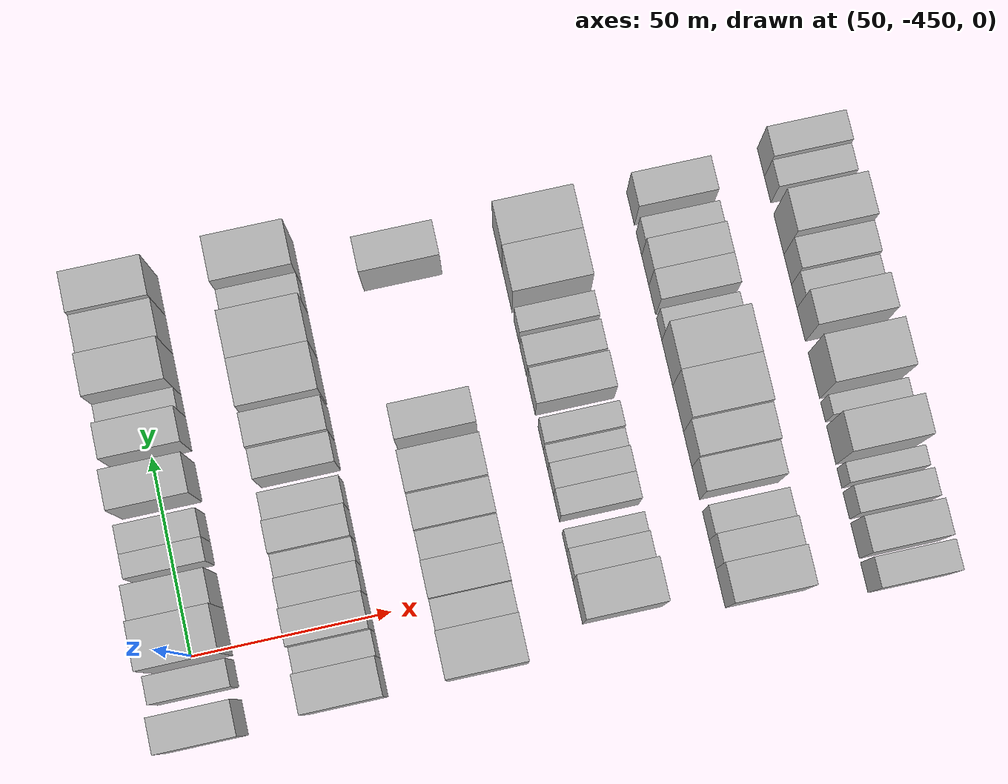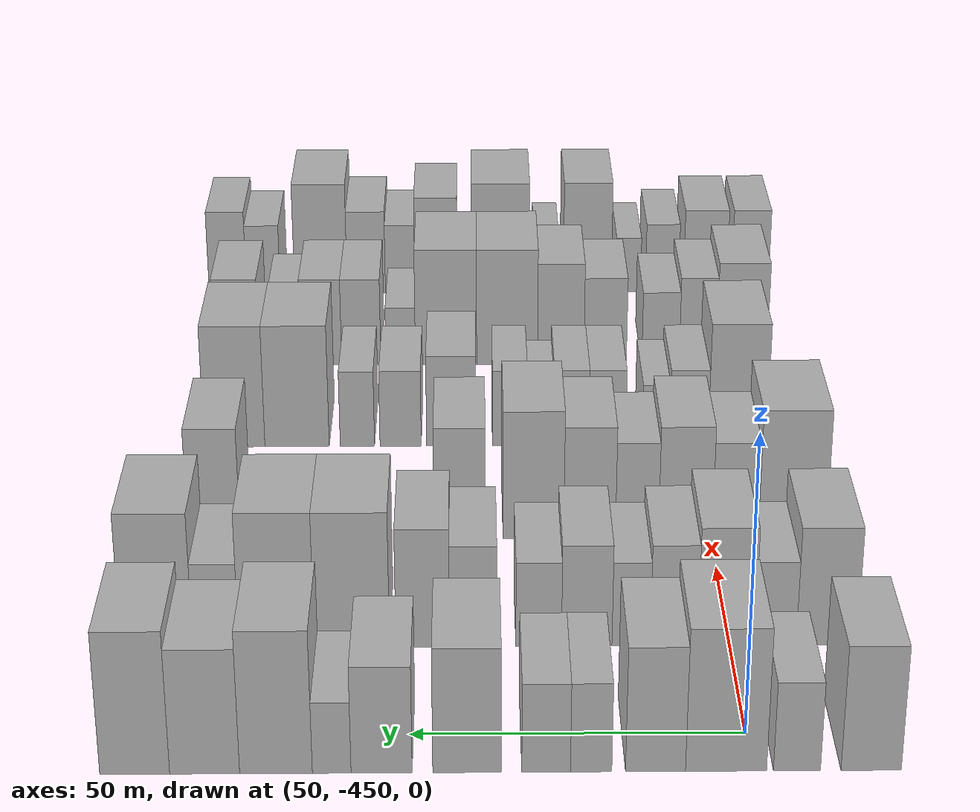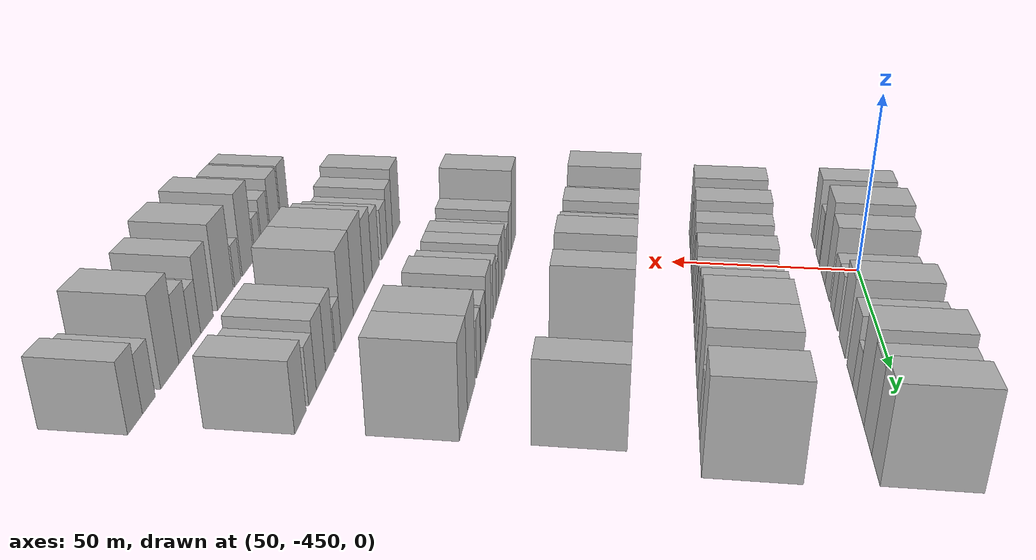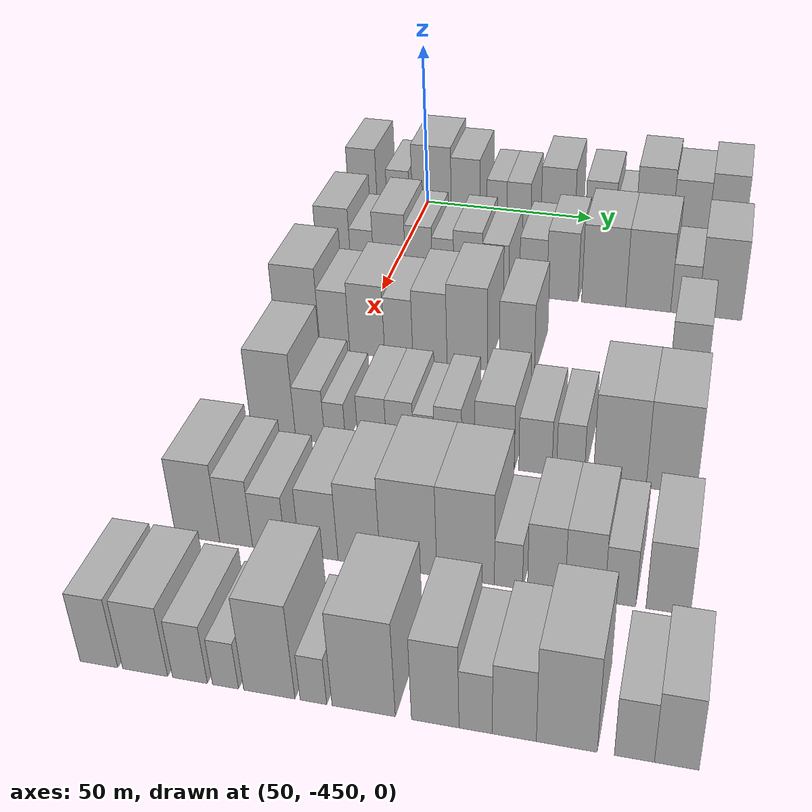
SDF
<sdf version="1.6">
 <world name="default">
  <model name="building_12">
   <static>1</static>
   <pose>50.0000 -467.3228 0 0.000000 0.000000 0.000000</pose>
   <link name="link">
    <pose>0 0 10.50 0 0 0</pose>
    <collision name="collision"><geometry><box><size>20.0000 8.7782 21.0000</size></box></geometry></collision>
    <visual name="visual">
     <cast_shadows>0</cast_shadows>
     <geometry><box><size>20.0000 8.7782 21.0000</size></box></geometry>
     <material>
      <script>
       <uri>model://HANNAS_wall/materials/scripts</uri>
       <uri>model://HANNAS_wall/materials/textures</uri>
       <name>vrc/HANNAS_wall</name>
      </script>
     </material>
    </visual>
   </link>
  </model>
  <model name="building_13">
   <static>1</static>
   <pose>50.0000 -456.5102 0 0.000000 0.000000 0.000000</pose>
   <link name="link">
    <pose>0 0 7.50 0 0 0</pose>
    <collision name="collision"><geometry><box><size>20.0000 6.8471 15.0000</size></box></geometry></collision>
    <visual name="visual">
     <cast_shadows>0</cast_shadows>
     <geometry><box><size>20.0000 6.8471 15.0000</size></box></geometry>
     <material>
      <script>
       <uri>model://HANNAS_wall/materials/scripts</uri>
       <uri>model://HANNAS_wall/materials/textures</uri>
       <name>vrc/HANNAS_wall</name>
      </script>
     </material>
    </visual>
   </link>
  </model>
  <model name="building_14">
   <static>1</static>
   <pose>50.0000 -446.1822 0 0.000000 0.000000 0.000000</pose>
   <link name="link">
    <pose>0 0 12.00 0 0 0</pose>
    <collision name="collision"><geometry><box><size>20.0000 11.8090 24.0000</size></box></geometry></collision>
    <visual name="visual">
     <cast_shadows>0</cast_shadows>
     <geometry><box><size>20.0000 11.8090 24.0000</size></box></geometry>
     <material>
      <script>
       <uri>model://HANNAS_wall/materials/scripts</uri>
       <uri>model://HANNAS_wall/materials/textures</uri>
       <name>vrc/HANNAS_wall</name>
      </script>
     </material>
    </visual>
   </link>
  </model>
  <model name="building_15">
   <static>1</static>
   <pose>50.0000 -435.9162 0 0.000000 0.000000 0.000000</pose>
   <link name="link">
    <pose>0 0 10.50 0 0 0</pose>
    <collision name="collision"><geometry><box><size>20.0000 8.7229 21.0000</size></box></geometry></collision>
    <visual name="visual">
     <cast_shadows>0</cast_shadows>
     <geometry><box><size>20.0000 8.7229 21.0000</size></box></geometry>
     <material>
      <script>
       <uri>model://HANNAS_wall/materials/scripts</uri>
       <uri>model://HANNAS_wall/materials/textures</uri>
       <name>vrc/HANNAS_wall</name>
      </script>
     </material>
    </visual>
   </link>
  </model>
  <model name="building_16">
   <static>1</static>
   <pose>50.0000 -426.5537 0 0.000000 0.000000 0.000000</pose>
   <link name="link">
    <pose>0 0 7.50 0 0 0</pose>
    <collision name="collision"><geometry><box><size>20.0000 6.0021 15.0000</size></box></geometry></collision>
    <visual name="visual">
     <cast_shadows>0</cast_shadows>
     <geometry><box><size>20.0000 6.0021 15.0000</size></box></geometry>
     <material>
      <script>
       <uri>model://HANNAS_wall/materials/scripts</uri>
       <uri>model://HANNAS_wall/materials/textures</uri>
       <name>vrc/HANNAS_wall</name>
      </script>
     </material>
    </visual>
   </link>
  </model>
  <model name="building_17">
   <static>1</static>
   <pose>50.0000 -420.0145 0 0.000000 0.000000 0.000000</pose>
   <link name="link">
    <pose>0 0 7.50 0 0 0</pose>
    <collision name="collision"><geometry><box><size>20.0000 7.0762 15.0000</size></box></geometry></collision>
    <visual name="visual">
     <cast_shadows>0</cast_shadows>
     <geometry><box><size>20.0000 7.0762 15.0000</size></box></geometry>
     <material>
      <script>
       <uri>model://HANNAS_wall/materials/scripts</uri>
       <uri>model://HANNAS_wall/materials/textures</uri>
       <name>vrc/HANNAS_wall</name>
      </script>
     </material>
    </visual>
   </link>
  </model>
  <model name="building_18">
   <static>1</static>
   <pose>50.0000 -408.5056 0 0.000000 0.000000 0.000000</pose>
   <link name="link">
    <pose>0 0 10.50 0 0 0</pose>
    <collision name="collision"><geometry><box><size>20.0000 9.9416 21.0000</size></box></geometry></collision>
    <visual name="visual">
     <cast_shadows>0</cast_shadows>
     <geometry><box><size>20.0000 9.9416 21.0000</size></box></geometry>
     <material>
      <script>
       <uri>model://HANNAS_wall/materials/scripts</uri>
       <uri>model://HANNAS_wall/materials/textures</uri>
       <name>vrc/HANNAS_wall</name>
      </script>
     </material>
    </visual>
   </link>
  </model>
  <model name="building_19">
   <static>1</static>
   <pose>50.0000 -396.1010 0 0.000000 0.000000 0.000000</pose>
   <link name="link">
    <pose>0 0 9.00 0 0 0</pose>
    <collision name="collision"><geometry><box><size>20.0000 8.8676 18.0000</size></box></geometry></collision>
    <visual name="visual">
     <cast_shadows>0</cast_shadows>
     <geometry><box><size>20.0000 8.8676 18.0000</size></box></geometry>
     <material>
      <script>
       <uri>model://HANNAS_wall/materials/scripts</uri>
       <uri>model://HANNAS_wall/materials/textures</uri>
       <name>vrc/HANNAS_wall</name>
      </script>
     </material>
    </visual>
   </link>
  </model>
  <model name="building_20">
   <static>1</static>
   <pose>50.0000 -388.8554 0 0.000000 0.000000 0.000000</pose>
   <link name="link">
    <pose>0 0 6.00 0 0 0</pose>
    <collision name="collision"><geometry><box><size>20.0000 5.6237 12.0000</size></box></geometry></collision>
    <visual name="visual">
     <cast_shadows>0</cast_shadows>
     <geometry><box><size>20.0000 5.6237 12.0000</size></box></geometry>
     <material>
      <script>
       <uri>model://HANNAS_wall/materials/scripts</uri>
       <uri>model://HANNAS_wall/materials/textures</uri>
       <name>vrc/HANNAS_wall</name>
      </script>
     </material>
    </visual>
   </link>
  </model>
  <model name="building_21">
   <static>1</static>
   <pose>50.0000 -380.7657 0 0.000000 0.000000 0.000000</pose>
   <link name="link">
    <pose>0 0 12.00 0 0 0</pose>
    <collision name="collision"><geometry><box><size>20.0000 10.5557 24.0000</size></box></geometry></collision>
    <visual name="visual">
     <cast_shadows>0</cast_shadows>
     <geometry><box><size>20.0000 10.5557 24.0000</size></box></geometry>
     <material>
      <script>
       <uri>model://HANNAS_wall/materials/scripts</uri>
       <uri>model://HANNAS_wall/materials/textures</uri>
       <name>vrc/HANNAS_wall</name>
      </script>
     </material>
    </visual>
   </link>
  </model>
  <model name="building_22">
   <static>1</static>
   <pose>50.0000 -370.4100 0 0.000000 0.000000 0.000000</pose>
   <link name="link">
    <pose>0 0 10.50 0 0 0</pose>
    <collision name="collision"><geometry><box><size>20.0000 10.1555 21.0000</size></box></geometry></collision>
    <visual name="visual">
     <cast_shadows>0</cast_shadows>
     <geometry><box><size>20.0000 10.1555 21.0000</size></box></geometry>
     <material>
      <script>
       <uri>model://HANNAS_wall/materials/scripts</uri>
       <uri>model://HANNAS_wall/materials/textures</uri>
       <name>vrc/HANNAS_wall</name>
      </script>
     </material>
    </visual>
   </link>
  </model>
  <model name="building_23">
   <static>1</static>
   <pose>50.0000 -360.2663 0 0.000000 0.000000 0.000000</pose>
   <link name="link">
    <pose>0 0 12.00 0 0 0</pose>
    <collision name="collision"><geometry><box><size>20.0000 10.1320 24.0000</size></box></geometry></collision>
    <visual name="visual">
     <cast_shadows>0</cast_shadows>
     <geometry><box><size>20.0000 10.1320 24.0000</size></box></geometry>
     <material>
      <script>
       <uri>model://HANNAS_wall/materials/scripts</uri>
       <uri>model://HANNAS_wall/materials/textures</uri>
       <name>vrc/HANNAS_wall</name>
      </script>
     </material>
    </visual>
   </link>
  </model>
  <model name="building_140">
   <static>1</static>
   <pose>85.0000 -465.2256 0 0.000000 0.000000 0.000000</pose>
   <link name="link">
    <pose>0 0 10.50 0 0 0</pose>
    <collision name="collision"><geometry><box><size>20.0000 9.6216 21.0000</size></box></geometry></collision>
    <visual name="visual">
     <cast_shadows>0</cast_shadows>
     <geometry><box><size>20.0000 9.6216 21.0000</size></box></geometry>
     <material>
      <script>
       <uri>model://HANNAS_wall/materials/scripts</uri>
       <uri>model://HANNAS_wall/materials/textures</uri>
       <name>vrc/HANNAS_wall</name>
      </script>
     </material>
    </visual>
   </link>
  </model>
  <model name="building_141">
   <static>1</static>
   <pose>85.0000 -457.1407 0 0.000000 0.000000 0.000000</pose>
   <link name="link">
    <pose>0 0 7.50 0 0 0</pose>
    <collision name="collision"><geometry><box><size>20.0000 6.5482 15.0000</size></box></geometry></collision>
    <visual name="visual">
     <cast_shadows>0</cast_shadows>
     <geometry><box><size>20.0000 6.5482 15.0000</size></box></geometry>
     <material>
      <script>
       <uri>model://HANNAS_wall/materials/scripts</uri>
       <uri>model://HANNAS_wall/materials/textures</uri>
       <name>vrc/HANNAS_wall</name>
      </script>
     </material>
    </visual>
   </link>
  </model>
  <model name="building_142">
   <static>1</static>
   <pose>85.0000 -449.3591 0 0.000000 0.000000 0.000000</pose>
   <link name="link">
    <pose>0 0 10.50 0 0 0</pose>
    <collision name="collision"><geometry><box><size>20.0000 9.0150 21.0000</size></box></geometry></collision>
    <visual name="visual">
     <cast_shadows>0</cast_shadows>
     <geometry><box><size>20.0000 9.0150 21.0000</size></box></geometry>
     <material>
      <script>
       <uri>model://HANNAS_wall/materials/scripts</uri>
       <uri>model://HANNAS_wall/materials/textures</uri>
       <name>vrc/HANNAS_wall</name>
      </script>
     </material>
    </visual>
   </link>
  </model>
  <model name="building_143">
   <static>1</static>
   <pose>85.0000 -441.1050 0 0.000000 0.000000 0.000000</pose>
   <link name="link">
    <pose>0 0 9.00 0 0 0</pose>
    <collision name="collision"><geometry><box><size>20.0000 7.4931 18.0000</size></box></geometry></collision>
    <visual name="visual">
     <cast_shadows>0</cast_shadows>
     <geometry><box><size>20.0000 7.4931 18.0000</size></box></geometry>
     <material>
      <script>
       <uri>model://HANNAS_wall/materials/scripts</uri>
       <uri>model://HANNAS_wall/materials/textures</uri>
       <name>vrc/HANNAS_wall</name>
      </script>
     </material>
    </visual>
   </link>
  </model>
  <model name="building_144">
   <static>1</static>
   <pose>85.0000 -434.3496 0 0.000000 0.000000 0.000000</pose>
   <link name="link">
    <pose>0 0 7.50 0 0 0</pose>
    <collision name="collision"><geometry><box><size>20.0000 6.0178 15.0000</size></box></geometry></collision>
    <visual name="visual">
     <cast_shadows>0</cast_shadows>
     <geometry><box><size>20.0000 6.0178 15.0000</size></box></geometry>
     <material>
      <script>
       <uri>model://HANNAS_wall/materials/scripts</uri>
       <uri>model://HANNAS_wall/materials/textures</uri>
       <name>vrc/HANNAS_wall</name>
      </script>
     </material>
    </visual>
   </link>
  </model>
  <model name="building_145">
   <static>1</static>
   <pose>85.0000 -427.3664 0 0.000000 0.000000 0.000000</pose>
   <link name="link">
    <pose>0 0 9.00 0 0 0</pose>
    <collision name="collision"><geometry><box><size>20.0000 7.9486 18.0000</size></box></geometry></collision>
    <visual name="visual">
     <cast_shadows>0</cast_shadows>
     <geometry><box><size>20.0000 7.9486 18.0000</size></box></geometry>
     <material>
      <script>
       <uri>model://HANNAS_wall/materials/scripts</uri>
       <uri>model://HANNAS_wall/materials/textures</uri>
       <name>vrc/HANNAS_wall</name>
      </script>
     </material>
    </visual>
   </link>
  </model>
  <model name="building_146">
   <static>1</static>
   <pose>85.0000 -419.7943 0 0.000000 0.000000 0.000000</pose>
   <link name="link">
    <pose>0 0 7.50 0 0 0</pose>
    <collision name="collision"><geometry><box><size>20.0000 7.1955 15.0000</size></box></geometry></collision>
    <visual name="visual">
     <cast_shadows>0</cast_shadows>
     <geometry><box><size>20.0000 7.1955 15.0000</size></box></geometry>
     <material>
      <script>
       <uri>model://HANNAS_wall/materials/scripts</uri>
       <uri>model://HANNAS_wall/materials/textures</uri>
       <name>vrc/HANNAS_wall</name>
      </script>
     </material>
    </visual>
   </link>
  </model>
  <model name="building_147">
   <static>1</static>
   <pose>85.0000 -409.4663 0 0.000000 0.000000 0.000000</pose>
   <link name="link">
    <pose>0 0 9.00 0 0 0</pose>
    <collision name="collision"><geometry><box><size>20.0000 7.4606 18.0000</size></box></geometry></collision>
    <visual name="visual">
     <cast_shadows>0</cast_shadows>
     <geometry><box><size>20.0000 7.4606 18.0000</size></box></geometry>
     <material>
      <script>
       <uri>model://HANNAS_wall/materials/scripts</uri>
       <uri>model://HANNAS_wall/materials/textures</uri>
       <name>vrc/HANNAS_wall</name>
      </script>
     </material>
    </visual>
   </link>
  </model>
  <model name="building_148">
   <static>1</static>
   <pose>85.0000 -401.5195 0 0.000000 0.000000 0.000000</pose>
   <link name="link">
    <pose>0 0 10.50 0 0 0</pose>
    <collision name="collision"><geometry><box><size>20.0000 8.4329 21.0000</size></box></geometry></collision>
    <visual name="visual">
     <cast_shadows>0</cast_shadows>
     <geometry><box><size>20.0000 8.4329 21.0000</size></box></geometry>
     <material>
      <script>
       <uri>model://HANNAS_wall/materials/scripts</uri>
       <uri>model://HANNAS_wall/materials/textures</uri>
       <name>vrc/HANNAS_wall</name>
      </script>
     </material>
    </visual>
   </link>
  </model>
  <model name="building_149">
   <static>1</static>
   <pose>85.0000 -390.3840 0 0.000000 0.000000 0.000000</pose>
   <link name="link">
    <pose>0 0 12.00 0 0 0</pose>
    <collision name="collision"><geometry><box><size>20.0000 11.8381 24.0000</size></box></geometry></collision>
    <visual name="visual">
     <cast_shadows>0</cast_shadows>
     <geometry><box><size>20.0000 11.8381 24.0000</size></box></geometry>
     <material>
      <script>
       <uri>model://HANNAS_wall/materials/scripts</uri>
       <uri>model://HANNAS_wall/materials/textures</uri>
       <name>vrc/HANNAS_wall</name>
      </script>
     </material>
    </visual>
   </link>
  </model>
  <model name="building_150">
   <static>1</static>
   <pose>85.0000 -378.5194 0 0.000000 0.000000 0.000000</pose>
   <link name="link">
    <pose>0 0 12.00 0 0 0</pose>
    <collision name="collision"><geometry><box><size>20.0000 11.8911 24.0000</size></box></geometry></collision>
    <visual name="visual">
     <cast_shadows>0</cast_shadows>
     <geometry><box><size>20.0000 11.8911 24.0000</size></box></geometry>
     <material>
      <script>
       <uri>model://HANNAS_wall/materials/scripts</uri>
       <uri>model://HANNAS_wall/materials/textures</uri>
       <name>vrc/HANNAS_wall</name>
      </script>
     </material>
    </visual>
   </link>
  </model>
  <model name="building_151">
   <static>1</static>
   <pose>85.0000 -368.9596 0 0.000000 0.000000 0.000000</pose>
   <link name="link">
    <pose>0 0 7.50 0 0 0</pose>
    <collision name="collision"><geometry><box><size>20.0000 7.2283 15.0000</size></box></geometry></collision>
    <visual name="visual">
     <cast_shadows>0</cast_shadows>
     <geometry><box><size>20.0000 7.2283 15.0000</size></box></geometry>
     <material>
      <script>
       <uri>model://HANNAS_wall/materials/scripts</uri>
       <uri>model://HANNAS_wall/materials/textures</uri>
       <name>vrc/HANNAS_wall</name>
      </script>
     </material>
    </visual>
   </link>
  </model>
  <model name="building_152">
   <static>1</static>
   <pose>85.0000 -359.6812 0 0.000000 0.000000 0.000000</pose>
   <link name="link">
    <pose>0 0 12.00 0 0 0</pose>
    <collision name="collision"><geometry><box><size>20.0000 11.3286 24.0000</size></box></geometry></collision>
    <visual name="visual">
     <cast_shadows>0</cast_shadows>
     <geometry><box><size>20.0000 11.3286 24.0000</size></box></geometry>
     <material>
      <script>
       <uri>model://HANNAS_wall/materials/scripts</uri>
       <uri>model://HANNAS_wall/materials/textures</uri>
       <name>vrc/HANNAS_wall</name>
      </script>
     </material>
    </visual>
   </link>
  </model>
  <model name="building_268">
   <static>1</static>
   <pose>120.0000 -463.7606 0 0.000000 0.000000 0.000000</pose>
   <link name="link">
    <pose>0 0 12.00 0 0 0</pose>
    <collision name="collision"><geometry><box><size>20.0000 11.5864 24.0000</size></box></geometry></collision>
    <visual name="visual">
     <cast_shadows>0</cast_shadows>
     <geometry><box><size>20.0000 11.5864 24.0000</size></box></geometry>
     <material>
      <script>
       <uri>model://HANNAS_wall/materials/scripts</uri>
       <uri>model://HANNAS_wall/materials/textures</uri>
       <name>vrc/HANNAS_wall</name>
      </script>
     </material>
    </visual>
   </link>
  </model>
  <model name="building_269">
   <static>1</static>
   <pose>120.0000 -454.0583 0 0.000000 0.000000 0.000000</pose>
   <link name="link">
    <pose>0 0 9.00 0 0 0</pose>
    <collision name="collision"><geometry><box><size>20.0000 7.8181 18.0000</size></box></geometry></collision>
    <visual name="visual">
     <cast_shadows>0</cast_shadows>
     <geometry><box><size>20.0000 7.8181 18.0000</size></box></geometry>
     <material>
      <script>
       <uri>model://HANNAS_wall/materials/scripts</uri>
       <uri>model://HANNAS_wall/materials/textures</uri>
       <name>vrc/HANNAS_wall</name>
      </script>
     </material>
    </visual>
   </link>
  </model>
  <model name="building_270">
   <static>1</static>
   <pose>120.0000 -445.5727 0 0.000000 0.000000 0.000000</pose>
   <link name="link">
    <pose>0 0 10.50 0 0 0</pose>
    <collision name="collision"><geometry><box><size>20.0000 9.1531 21.0000</size></box></geometry></collision>
    <visual name="visual">
     <cast_shadows>0</cast_shadows>
     <geometry><box><size>20.0000 9.1531 21.0000</size></box></geometry>
     <material>
      <script>
       <uri>model://HANNAS_wall/materials/scripts</uri>
       <uri>model://HANNAS_wall/materials/textures</uri>
       <name>vrc/HANNAS_wall</name>
      </script>
     </material>
    </visual>
   </link>
  </model>
  <model name="building_271">
   <static>1</static>
   <pose>120.0000 -437.3479 0 0.000000 0.000000 0.000000</pose>
   <link name="link">
    <pose>0 0 9.00 0 0 0</pose>
    <collision name="collision"><geometry><box><size>20.0000 7.2966 18.0000</size></box></geometry></collision>
    <visual name="visual">
     <cast_shadows>0</cast_shadows>
     <geometry><box><size>20.0000 7.2966 18.0000</size></box></geometry>
     <material>
      <script>
       <uri>model://HANNAS_wall/materials/scripts</uri>
       <uri>model://HANNAS_wall/materials/textures</uri>
       <name>vrc/HANNAS_wall</name>
      </script>
     </material>
    </visual>
   </link>
  </model>
  <model name="building_272">
   <static>1</static>
   <pose>120.0000 -429.3195 0 0.000000 0.000000 0.000000</pose>
   <link name="link">
    <pose>0 0 10.50 0 0 0</pose>
    <collision name="collision"><geometry><box><size>20.0000 8.7601 21.0000</size></box></geometry></collision>
    <visual name="visual">
     <cast_shadows>0</cast_shadows>
     <geometry><box><size>20.0000 8.7601 21.0000</size></box></geometry>
     <material>
      <script>
       <uri>model://HANNAS_wall/materials/scripts</uri>
       <uri>model://HANNAS_wall/materials/textures</uri>
       <name>vrc/HANNAS_wall</name>
      </script>
     </material>
    </visual>
   </link>
  </model>
  <model name="building_273">
   <static>1</static>
   <pose>120.0000 -419.7780 0 0.000000 0.000000 0.000000</pose>
   <link name="link">
    <pose>0 0 12.00 0 0 0</pose>
    <collision name="collision"><geometry><box><size>20.0000 10.3230 24.0000</size></box></geometry></collision>
    <visual name="visual">
     <cast_shadows>0</cast_shadows>
     <geometry><box><size>20.0000 10.3230 24.0000</size></box></geometry>
     <material>
      <script>
       <uri>model://HANNAS_wall/materials/scripts</uri>
       <uri>model://HANNAS_wall/materials/textures</uri>
       <name>vrc/HANNAS_wall</name>
      </script>
     </material>
    </visual>
   </link>
  </model>
  <model name="building_274">
   <static>1</static>
   <pose>120.0000 -407.2588 0 0.000000 0.000000 0.000000</pose>
   <link name="link">
    <pose>0 0 10.50 0 0 0</pose>
    <collision name="collision"><geometry><box><size>20.0000 8.7153 21.0000</size></box></geometry></collision>
    <visual name="visual">
     <cast_shadows>0</cast_shadows>
     <geometry><box><size>20.0000 8.7153 21.0000</size></box></geometry>
     <material>
      <script>
       <uri>model://HANNAS_wall/materials/scripts</uri>
       <uri>model://HANNAS_wall/materials/textures</uri>
       <name>vrc/HANNAS_wall</name>
      </script>
     </material>
    </visual>
   </link>
  </model>
  <model name="building_275">
   <static>1</static>
   <pose>120.0000 -365.6200 0 0.000000 0.000000 0.000000</pose>
   <link name="link">
    <pose>0 0 10.50 0 0 0</pose>
    <collision name="collision"><geometry><box><size>20.0000 8.8541 21.0000</size></box></geometry></collision>
    <visual name="visual">
     <cast_shadows>0</cast_shadows>
     <geometry><box><size>20.0000 8.8541 21.0000</size></box></geometry>
     <material>
      <script>
       <uri>model://HANNAS_wall/materials/scripts</uri>
       <uri>model://HANNAS_wall/materials/textures</uri>
       <name>vrc/HANNAS_wall</name>
      </script>
     </material>
    </visual>
   </link>
  </model>
  <model name="building_392">
   <static>1</static>
   <pose>155.0000 -457.7177 0 0.000000 0.000000 0.000000</pose>
   <link name="link">
    <pose>0 0 12.00 0 0 0</pose>
    <collision name="collision"><geometry><box><size>20.0000 10.6877 24.0000</size></box></geometry></collision>
    <visual name="visual">
     <cast_shadows>0</cast_shadows>
     <geometry><box><size>20.0000 10.6877 24.0000</size></box></geometry>
     <material>
      <script>
       <uri>model://HANNAS_wall/materials/scripts</uri>
       <uri>model://HANNAS_wall/materials/textures</uri>
       <name>vrc/HANNAS_wall</name>
      </script>
     </material>
    </visual>
   </link>
  </model>
  <model name="building_393">
   <static>1</static>
   <pose>155.0000 -448.8604 0 0.000000 0.000000 0.000000</pose>
   <link name="link">
    <pose>0 0 7.50 0 0 0</pose>
    <collision name="collision"><geometry><box><size>20.0000 7.0269 15.0000</size></box></geometry></collision>
    <visual name="visual">
     <cast_shadows>0</cast_shadows>
     <geometry><box><size>20.0000 7.0269 15.0000</size></box></geometry>
     <material>
      <script>
       <uri>model://HANNAS_wall/materials/scripts</uri>
       <uri>model://HANNAS_wall/materials/textures</uri>
       <name>vrc/HANNAS_wall</name>
      </script>
     </material>
    </visual>
   </link>
  </model>
  <model name="building_394">
   <static>1</static>
   <pose>155.0000 -442.8613 0 0.000000 0.000000 0.000000</pose>
   <link name="link">
    <pose>0 0 6.00 0 0 0</pose>
    <collision name="collision"><geometry><box><size>20.0000 4.9713 12.0000</size></box></geometry></collision>
    <visual name="visual">
     <cast_shadows>0</cast_shadows>
     <geometry><box><size>20.0000 4.9713 12.0000</size></box></geometry>
     <material>
      <script>
       <uri>model://HANNAS_wall/materials/scripts</uri>
       <uri>model://HANNAS_wall/materials/textures</uri>
       <name>vrc/HANNAS_wall</name>
      </script>
     </material>
    </visual>
   </link>
  </model>
  <model name="building_395">
   <static>1</static>
   <pose>155.0000 -434.0347 0 0.000000 0.000000 0.000000</pose>
   <link name="link">
    <pose>0 0 7.50 0 0 0</pose>
    <collision name="collision"><geometry><box><size>20.0000 6.6820 15.0000</size></box></geometry></collision>
    <visual name="visual">
     <cast_shadows>0</cast_shadows>
     <geometry><box><size>20.0000 6.6820 15.0000</size></box></geometry>
     <material>
      <script>
       <uri>model://HANNAS_wall/materials/scripts</uri>
       <uri>model://HANNAS_wall/materials/textures</uri>
       <name>vrc/HANNAS_wall</name>
      </script>
     </material>
    </visual>
   </link>
  </model>
  <model name="building_396">
   <static>1</static>
   <pose>155.0000 -427.5135 0 0.000000 0.000000 0.000000</pose>
   <link name="link">
    <pose>0 0 7.50 0 0 0</pose>
    <collision name="collision"><geometry><box><size>20.0000 6.3604 15.0000</size></box></geometry></collision>
    <visual name="visual">
     <cast_shadows>0</cast_shadows>
     <geometry><box><size>20.0000 6.3604 15.0000</size></box></geometry>
     <material>
      <script>
       <uri>model://HANNAS_wall/materials/scripts</uri>
       <uri>model://HANNAS_wall/materials/textures</uri>
       <name>vrc/HANNAS_wall</name>
      </script>
     </material>
    </visual>
   </link>
  </model>
  <model name="building_397">
   <static>1</static>
   <pose>155.0000 -421.8887 0 0.000000 0.000000 0.000000</pose>
   <link name="link">
    <pose>0 0 6.00 0 0 0</pose>
    <collision name="collision"><geometry><box><size>20.0000 4.8892 12.0000</size></box></geometry></collision>
    <visual name="visual">
     <cast_shadows>0</cast_shadows>
     <geometry><box><size>20.0000 4.8892 12.0000</size></box></geometry>
     <material>
      <script>
       <uri>model://HANNAS_wall/materials/scripts</uri>
       <uri>model://HANNAS_wall/materials/textures</uri>
       <name>vrc/HANNAS_wall</name>
      </script>
     </material>
    </visual>
   </link>
  </model>
  <model name="building_398">
   <static>1</static>
   <pose>155.0000 -416.2859 0 0.000000 0.000000 0.000000</pose>
   <link name="link">
    <pose>0 0 7.50 0 0 0</pose>
    <collision name="collision"><geometry><box><size>20.0000 6.3164 15.0000</size></box></geometry></collision>
    <visual name="visual">
     <cast_shadows>0</cast_shadows>
     <geometry><box><size>20.0000 6.3164 15.0000</size></box></geometry>
     <material>
      <script>
       <uri>model://HANNAS_wall/materials/scripts</uri>
       <uri>model://HANNAS_wall/materials/textures</uri>
       <name>vrc/HANNAS_wall</name>
      </script>
     </material>
    </visual>
   </link>
  </model>
  <model name="building_399">
   <static>1</static>
   <pose>155.0000 -405.6382 0 0.000000 0.000000 0.000000</pose>
   <link name="link">
    <pose>0 0 9.00 0 0 0</pose>
    <collision name="collision"><geometry><box><size>20.0000 8.9791 18.0000</size></box></geometry></collision>
    <visual name="visual">
     <cast_shadows>0</cast_shadows>
     <geometry><box><size>20.0000 8.9791 18.0000</size></box></geometry>
     <material>
      <script>
       <uri>model://HANNAS_wall/materials/scripts</uri>
       <uri>model://HANNAS_wall/materials/textures</uri>
       <name>vrc/HANNAS_wall</name>
      </script>
     </material>
    </visual>
   </link>
  </model>
  <model name="building_400">
   <static>1</static>
   <pose>155.0000 -396.4063 0 0.000000 0.000000 0.000000</pose>
   <link name="link">
    <pose>0 0 7.50 0 0 0</pose>
    <collision name="collision"><geometry><box><size>20.0000 7.4846 15.0000</size></box></geometry></collision>
    <visual name="visual">
     <cast_shadows>0</cast_shadows>
     <geometry><box><size>20.0000 7.4846 15.0000</size></box></geometry>
     <material>
      <script>
       <uri>model://HANNAS_wall/materials/scripts</uri>
       <uri>model://HANNAS_wall/materials/textures</uri>
       <name>vrc/HANNAS_wall</name>
      </script>
     </material>
    </visual>
   </link>
  </model>
  <model name="building_401">
   <static>1</static>
   <pose>155.0000 -388.5423 0 0.000000 0.000000 0.000000</pose>
   <link name="link">
    <pose>0 0 7.50 0 0 0</pose>
    <collision name="collision"><geometry><box><size>20.0000 6.2436 15.0000</size></box></geometry></collision>
    <visual name="visual">
     <cast_shadows>0</cast_shadows>
     <geometry><box><size>20.0000 6.2436 15.0000</size></box></geometry>
     <material>
      <script>
       <uri>model://HANNAS_wall/materials/scripts</uri>
       <uri>model://HANNAS_wall/materials/textures</uri>
       <name>vrc/HANNAS_wall</name>
      </script>
     </material>
    </visual>
   </link>
  </model>
  <model name="building_402">
   <static>1</static>
   <pose>155.0000 -377.5754 0 0.000000 0.000000 0.000000</pose>
   <link name="link">
    <pose>0 0 12.00 0 0 0</pose>
    <collision name="collision"><geometry><box><size>20.0000 11.6901 24.0000</size></box></geometry></collision>
    <visual name="visual">
     <cast_shadows>0</cast_shadows>
     <geometry><box><size>20.0000 11.6901 24.0000</size></box></geometry>
     <material>
      <script>
       <uri>model://HANNAS_wall/materials/scripts</uri>
       <uri>model://HANNAS_wall/materials/textures</uri>
       <name>vrc/HANNAS_wall</name>
      </script>
     </material>
    </visual>
   </link>
  </model>
  <model name="building_403">
   <static>1</static>
   <pose>155.0000 -366.2288 0 0.000000 0.000000 0.000000</pose>
   <link name="link">
    <pose>0 0 12.00 0 0 0</pose>
    <collision name="collision"><geometry><box><size>20.0000 11.0032 24.0000</size></box></geometry></collision>
    <visual name="visual">
     <cast_shadows>0</cast_shadows>
     <geometry><box><size>20.0000 11.0032 24.0000</size></box></geometry>
     <material>
      <script>
       <uri>model://HANNAS_wall/materials/scripts</uri>
       <uri>model://HANNAS_wall/materials/textures</uri>
       <name>vrc/HANNAS_wall</name>
      </script>
     </material>
    </visual>
   </link>
  </model>
  <model name="building_526">
   <static>1</static>
   <pose>190.0000 -461.8370 0 0.000000 0.000000 0.000000</pose>
   <link name="link">
    <pose>0 0 10.50 0 0 0</pose>
    <collision name="collision"><geometry><box><size>20.0000 9.8317 21.0000</size></box></geometry></collision>
    <visual name="visual">
     <cast_shadows>0</cast_shadows>
     <geometry><box><size>20.0000 9.8317 21.0000</size></box></geometry>
     <material>
      <script>
       <uri>model://HANNAS_wall/materials/scripts</uri>
       <uri>model://HANNAS_wall/materials/textures</uri>
       <name>vrc/HANNAS_wall</name>
      </script>
     </material>
    </visual>
   </link>
  </model>
  <model name="building_527">
   <static>1</static>
   <pose>190.0000 -453.3136 0 0.000000 0.000000 0.000000</pose>
   <link name="link">
    <pose>0 0 9.00 0 0 0</pose>
    <collision name="collision"><geometry><box><size>20.0000 7.2151 18.0000</size></box></geometry></collision>
    <visual name="visual">
     <cast_shadows>0</cast_shadows>
     <geometry><box><size>20.0000 7.2151 18.0000</size></box></geometry>
     <material>
      <script>
       <uri>model://HANNAS_wall/materials/scripts</uri>
       <uri>model://HANNAS_wall/materials/textures</uri>
       <name>vrc/HANNAS_wall</name>
      </script>
     </material>
    </visual>
   </link>
  </model>
  <model name="building_528">
   <static>1</static>
   <pose>190.0000 -446.0787 0 0.000000 0.000000 0.000000</pose>
   <link name="link">
    <pose>0 0 7.50 0 0 0</pose>
    <collision name="collision"><geometry><box><size>20.0000 7.2546 15.0000</size></box></geometry></collision>
    <visual name="visual">
     <cast_shadows>0</cast_shadows>
     <geometry><box><size>20.0000 7.2546 15.0000</size></box></geometry>
     <material>
      <script>
       <uri>model://HANNAS_wall/materials/scripts</uri>
       <uri>model://HANNAS_wall/materials/textures</uri>
       <name>vrc/HANNAS_wall</name>
      </script>
     </material>
    </visual>
   </link>
  </model>
  <model name="building_529">
   <static>1</static>
   <pose>190.0000 -435.3200 0 0.000000 0.000000 0.000000</pose>
   <link name="link">
    <pose>0 0 9.00 0 0 0</pose>
    <collision name="collision"><geometry><box><size>20.0000 8.2628 18.0000</size></box></geometry></collision>
    <visual name="visual">
     <cast_shadows>0</cast_shadows>
     <geometry><box><size>20.0000 8.2628 18.0000</size></box></geometry>
     <material>
      <script>
       <uri>model://HANNAS_wall/materials/scripts</uri>
       <uri>model://HANNAS_wall/materials/textures</uri>
       <name>vrc/HANNAS_wall</name>
      </script>
     </material>
    </visual>
   </link>
  </model>
  <model name="building_530">
   <static>1</static>
   <pose>190.0000 -426.6853 0 0.000000 0.000000 0.000000</pose>
   <link name="link">
    <pose>0 0 10.50 0 0 0</pose>
    <collision name="collision"><geometry><box><size>20.0000 9.0066 21.0000</size></box></geometry></collision>
    <visual name="visual">
     <cast_shadows>0</cast_shadows>
     <geometry><box><size>20.0000 9.0066 21.0000</size></box></geometry>
     <material>
      <script>
       <uri>model://HANNAS_wall/materials/scripts</uri>
       <uri>model://HANNAS_wall/materials/textures</uri>
       <name>vrc/HANNAS_wall</name>
      </script>
     </material>
    </visual>
   </link>
  </model>
  <model name="building_531">
   <static>1</static>
   <pose>190.0000 -416.2745 0 0.000000 0.000000 0.000000</pose>
   <link name="link">
    <pose>0 0 12.00 0 0 0</pose>
    <collision name="collision"><geometry><box><size>20.0000 11.8150 24.0000</size></box></geometry></collision>
    <visual name="visual">
     <cast_shadows>0</cast_shadows>
     <geometry><box><size>20.0000 11.8150 24.0000</size></box></geometry>
     <material>
      <script>
       <uri>model://HANNAS_wall/materials/scripts</uri>
       <uri>model://HANNAS_wall/materials/textures</uri>
       <name>vrc/HANNAS_wall</name>
      </script>
     </material>
    </visual>
   </link>
  </model>
  <model name="building_532">
   <static>1</static>
   <pose>190.0000 -404.4208 0 0.000000 0.000000 0.000000</pose>
   <link name="link">
    <pose>0 0 12.00 0 0 0</pose>
    <collision name="collision"><geometry><box><size>20.0000 11.8924 24.0000</size></box></geometry></collision>
    <visual name="visual">
     <cast_shadows>0</cast_shadows>
     <geometry><box><size>20.0000 11.8924 24.0000</size></box></geometry>
     <material>
      <script>
       <uri>model://HANNAS_wall/materials/scripts</uri>
       <uri>model://HANNAS_wall/materials/textures</uri>
       <name>vrc/HANNAS_wall</name>
      </script>
     </material>
    </visual>
   </link>
  </model>
  <model name="building_533">
   <static>1</static>
   <pose>190.0000 -395.6144 0 0.000000 0.000000 0.000000</pose>
   <link name="link">
    <pose>0 0 6.00 0 0 0</pose>
    <collision name="collision"><geometry><box><size>20.0000 5.7204 12.0000</size></box></geometry></collision>
    <visual name="visual">
     <cast_shadows>0</cast_shadows>
     <geometry><box><size>20.0000 5.7204 12.0000</size></box></geometry>
     <material>
      <script>
       <uri>model://HANNAS_wall/materials/scripts</uri>
       <uri>model://HANNAS_wall/materials/textures</uri>
       <name>vrc/HANNAS_wall</name>
      </script>
     </material>
    </visual>
   </link>
  </model>
  <model name="building_534">
   <static>1</static>
   <pose>190.0000 -387.9587 0 0.000000 0.000000 0.000000</pose>
   <link name="link">
    <pose>0 0 9.00 0 0 0</pose>
    <collision name="collision"><geometry><box><size>20.0000 7.5911 18.0000</size></box></geometry></collision>
    <visual name="visual">
     <cast_shadows>0</cast_shadows>
     <geometry><box><size>20.0000 7.5911 18.0000</size></box></geometry>
     <material>
      <script>
       <uri>model://HANNAS_wall/materials/scripts</uri>
       <uri>model://HANNAS_wall/materials/textures</uri>
       <name>vrc/HANNAS_wall</name>
      </script>
     </material>
    </visual>
   </link>
  </model>
  <model name="building_535">
   <static>1</static>
   <pose>190.0000 -380.2178 0 0.000000 0.000000 0.000000</pose>
   <link name="link">
    <pose>0 0 9.00 0 0 0</pose>
    <collision name="collision"><geometry><box><size>20.0000 7.8906 18.0000</size></box></geometry></collision>
    <visual name="visual">
     <cast_shadows>0</cast_shadows>
     <geometry><box><size>20.0000 7.8906 18.0000</size></box></geometry>
     <material>
      <script>
       <uri>model://HANNAS_wall/materials/scripts</uri>
       <uri>model://HANNAS_wall/materials/textures</uri>
       <name>vrc/HANNAS_wall</name>
      </script>
     </material>
    </visual>
   </link>
  </model>
  <model name="building_536">
   <static>1</static>
   <pose>190.0000 -373.1914 0 0.000000 0.000000 0.000000</pose>
   <link name="link">
    <pose>0 0 7.50 0 0 0</pose>
    <collision name="collision"><geometry><box><size>20.0000 6.1623 15.0000</size></box></geometry></collision>
    <visual name="visual">
     <cast_shadows>0</cast_shadows>
     <geometry><box><size>20.0000 6.1623 15.0000</size></box></geometry>
     <material>
      <script>
       <uri>model://HANNAS_wall/materials/scripts</uri>
       <uri>model://HANNAS_wall/materials/textures</uri>
       <name>vrc/HANNAS_wall</name>
      </script>
     </material>
    </visual>
   </link>
  </model>
  <model name="building_537">
   <static>1</static>
   <pose>190.0000 -363.7735 0 0.000000 0.000000 0.000000</pose>
   <link name="link">
    <pose>0 0 9.00 0 0 0</pose>
    <collision name="collision"><geometry><box><size>20.0000 8.6735 18.0000</size></box></geometry></collision>
    <visual name="visual">
     <cast_shadows>0</cast_shadows>
     <geometry><box><size>20.0000 8.6735 18.0000</size></box></geometry>
     <material>
      <script>
       <uri>model://HANNAS_wall/materials/scripts</uri>
       <uri>model://HANNAS_wall/materials/textures</uri>
       <name>vrc/HANNAS_wall</name>
      </script>
     </material>
    </visual>
   </link>
  </model>
  <model name="building_648">
   <static>1</static>
   <pose>225.0000 -466.9196 0 0.000000 0.000000 0.000000</pose>
   <link name="link">
    <pose>0 0 9.00 0 0 0</pose>
    <collision name="collision"><geometry><box><size>20.0000 7.5971 18.0000</size></box></geometry></collision>
    <visual name="visual">
     <cast_shadows>0</cast_shadows>
     <geometry><box><size>20.0000 7.5971 18.0000</size></box></geometry>
     <material>
      <script>
       <uri>model://HANNAS_wall/materials/scripts</uri>
       <uri>model://HANNAS_wall/materials/textures</uri>
       <name>vrc/HANNAS_wall</name>
      </script>
     </material>
    </visual>
   </link>
  </model>
  <model name="building_649">
   <static>1</static>
   <pose>225.0000 -457.6437 0 0.000000 0.000000 0.000000</pose>
   <link name="link">
    <pose>0 0 9.00 0 0 0</pose>
    <collision name="collision"><geometry><box><size>20.0000 8.9546 18.0000</size></box></geometry></collision>
    <visual name="visual">
     <cast_shadows>0</cast_shadows>
     <geometry><box><size>20.0000 8.9546 18.0000</size></box></geometry>
     <material>
      <script>
       <uri>model://HANNAS_wall/materials/scripts</uri>
       <uri>model://HANNAS_wall/materials/textures</uri>
       <name>vrc/HANNAS_wall</name>
      </script>
     </material>
    </visual>
   </link>
  </model>
  <model name="building_650">
   <static>1</static>
   <pose>225.0000 -448.7435 0 0.000000 0.000000 0.000000</pose>
   <link name="link">
    <pose>0 0 7.50 0 0 0</pose>
    <collision name="collision"><geometry><box><size>20.0000 6.8459 15.0000</size></box></geometry></collision>
    <visual name="visual">
     <cast_shadows>0</cast_shadows>
     <geometry><box><size>20.0000 6.8459 15.0000</size></box></geometry>
     <material>
      <script>
       <uri>model://HANNAS_wall/materials/scripts</uri>
       <uri>model://HANNAS_wall/materials/textures</uri>
       <name>vrc/HANNAS_wall</name>
      </script>
     </material>
    </visual>
   </link>
  </model>
  <model name="building_651">
   <static>1</static>
   <pose>225.0000 -441.7806 0 0.000000 0.000000 0.000000</pose>
   <link name="link">
    <pose>0 0 6.00 0 0 0</pose>
    <collision name="collision"><geometry><box><size>20.0000 5.0799 12.0000</size></box></geometry></collision>
    <visual name="visual">
     <cast_shadows>0</cast_shadows>
     <geometry><box><size>20.0000 5.0799 12.0000</size></box></geometry>
     <material>
      <script>
       <uri>model://HANNAS_wall/materials/scripts</uri>
       <uri>model://HANNAS_wall/materials/textures</uri>
       <name>vrc/HANNAS_wall</name>
      </script>
     </material>
    </visual>
   </link>
  </model>
  <model name="building_652">
   <static>1</static>
   <pose>225.0000 -433.3060 0 0.000000 0.000000 0.000000</pose>
   <link name="link">
    <pose>0 0 12.00 0 0 0</pose>
    <collision name="collision"><geometry><box><size>20.0000 9.8694 24.0000</size></box></geometry></collision>
    <visual name="visual">
     <cast_shadows>0</cast_shadows>
     <geometry><box><size>20.0000 9.8694 24.0000</size></box></geometry>
     <material>
      <script>
       <uri>model://HANNAS_wall/materials/scripts</uri>
       <uri>model://HANNAS_wall/materials/textures</uri>
       <name>vrc/HANNAS_wall</name>
      </script>
     </material>
    </visual>
   </link>
  </model>
  <model name="building_653">
   <static>1</static>
   <pose>225.0000 -424.8453 0 0.000000 0.000000 0.000000</pose>
   <link name="link">
    <pose>0 0 6.00 0 0 0</pose>
    <collision name="collision"><geometry><box><size>20.0000 5.0519 12.0000</size></box></geometry></collision>
    <visual name="visual">
     <cast_shadows>0</cast_shadows>
     <geometry><box><size>20.0000 5.0519 12.0000</size></box></geometry>
     <material>
      <script>
       <uri>model://HANNAS_wall/materials/scripts</uri>
       <uri>model://HANNAS_wall/materials/textures</uri>
       <name>vrc/HANNAS_wall</name>
      </script>
     </material>
    </visual>
   </link>
  </model>
  <model name="building_654">
   <static>1</static>
   <pose>225.0000 -415.3826 0 0.000000 0.000000 0.000000</pose>
   <link name="link">
    <pose>0 0 12.00 0 0 0</pose>
    <collision name="collision"><geometry><box><size>20.0000 11.8735 24.0000</size></box></geometry></collision>
    <visual name="visual">
     <cast_shadows>0</cast_shadows>
     <geometry><box><size>20.0000 11.8735 24.0000</size></box></geometry>
     <material>
      <script>
       <uri>model://HANNAS_wall/materials/scripts</uri>
       <uri>model://HANNAS_wall/materials/textures</uri>
       <name>vrc/HANNAS_wall</name>
      </script>
     </material>
    </visual>
   </link>
  </model>
  <model name="building_655">
   <static>1</static>
   <pose>225.0000 -402.0803 0 0.000000 0.000000 0.000000</pose>
   <link name="link">
    <pose>0 0 10.50 0 0 0</pose>
    <collision name="collision"><geometry><box><size>20.0000 8.7310 21.0000</size></box></geometry></collision>
    <visual name="visual">
     <cast_shadows>0</cast_shadows>
     <geometry><box><size>20.0000 8.7310 21.0000</size></box></geometry>
     <material>
      <script>
       <uri>model://HANNAS_wall/materials/scripts</uri>
       <uri>model://HANNAS_wall/materials/textures</uri>
       <name>vrc/HANNAS_wall</name>
      </script>
     </material>
    </visual>
   </link>
  </model>
  <model name="building_656">
   <static>1</static>
   <pose>225.0000 -394.6776 0 0.000000 0.000000 0.000000</pose>
   <link name="link">
    <pose>0 0 7.50 0 0 0</pose>
    <collision name="collision"><geometry><box><size>20.0000 6.0744 15.0000</size></box></geometry></collision>
    <visual name="visual">
     <cast_shadows>0</cast_shadows>
     <geometry><box><size>20.0000 6.0744 15.0000</size></box></geometry>
     <material>
      <script>
       <uri>model://HANNAS_wall/materials/scripts</uri>
       <uri>model://HANNAS_wall/materials/textures</uri>
       <name>vrc/HANNAS_wall</name>
      </script>
     </material>
    </visual>
   </link>
  </model>
  <model name="building_657">
   <static>1</static>
   <pose>225.0000 -387.6997 0 0.000000 0.000000 0.000000</pose>
   <link name="link">
    <pose>0 0 9.00 0 0 0</pose>
    <collision name="collision"><geometry><box><size>20.0000 7.8815 18.0000</size></box></geometry></collision>
    <visual name="visual">
     <cast_shadows>0</cast_shadows>
     <geometry><box><size>20.0000 7.8815 18.0000</size></box></geometry>
     <material>
      <script>
       <uri>model://HANNAS_wall/materials/scripts</uri>
       <uri>model://HANNAS_wall/materials/textures</uri>
       <name>vrc/HANNAS_wall</name>
      </script>
     </material>
    </visual>
   </link>
  </model>
  <model name="building_658">
   <static>1</static>
   <pose>225.0000 -378.3528 0 0.000000 0.000000 0.000000</pose>
   <link name="link">
    <pose>0 0 12.00 0 0 0</pose>
    <collision name="collision"><geometry><box><size>20.0000 10.8123 24.0000</size></box></geometry></collision>
    <visual name="visual">
     <cast_shadows>0</cast_shadows>
     <geometry><box><size>20.0000 10.8123 24.0000</size></box></geometry>
     <material>
      <script>
       <uri>model://HANNAS_wall/materials/scripts</uri>
       <uri>model://HANNAS_wall/materials/textures</uri>
       <name>vrc/HANNAS_wall</name>
      </script>
     </material>
    </visual>
   </link>
  </model>
  <model name="building_659">
   <static>1</static>
   <pose>225.0000 -366.4654 0 0.000000 0.000000 0.000000</pose>
   <link name="link">
    <pose>0 0 7.50 0 0 0</pose>
    <collision name="collision"><geometry><box><size>20.0000 6.9624 15.0000</size></box></geometry></collision>
    <visual name="visual">
     <cast_shadows>0</cast_shadows>
     <geometry><box><size>20.0000 6.9624 15.0000</size></box></geometry>
     <material>
      <script>
       <uri>model://HANNAS_wall/materials/scripts</uri>
       <uri>model://HANNAS_wall/materials/textures</uri>
       <name>vrc/HANNAS_wall</name>
      </script>
     </material>
    </visual>
   </link>
  </model>
  <model name="building_660">
   <static>1</static>
   <pose>225.0000 -359.1414 0 0.000000 0.000000 0.000000</pose>
   <link name="link">
    <pose>0 0 9.00 0 0 0</pose>
    <collision name="collision"><geometry><box><size>20.0000 7.6855 18.0000</size></box></geometry></collision>
    <visual name="visual">
     <cast_shadows>0</cast_shadows>
     <geometry><box><size>20.0000 7.6855 18.0000</size></box></geometry>
     <material>
      <script>
       <uri>model://HANNAS_wall/materials/scripts</uri>
       <uri>model://HANNAS_wall/materials/textures</uri>
       <name>vrc/HANNAS_wall</name>
      </script>
     </material>
    </visual>
   </link>
  </model>
 </world>
</sdf>
